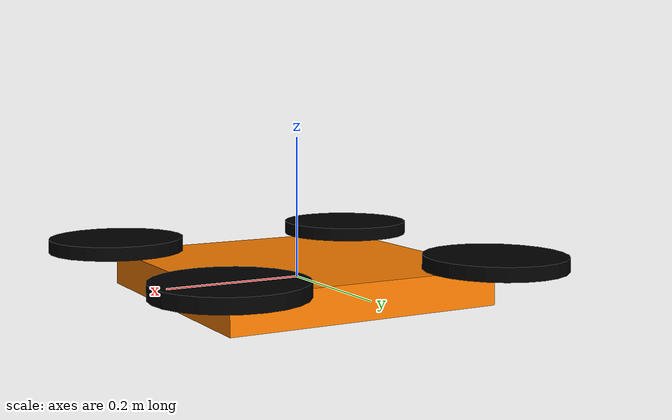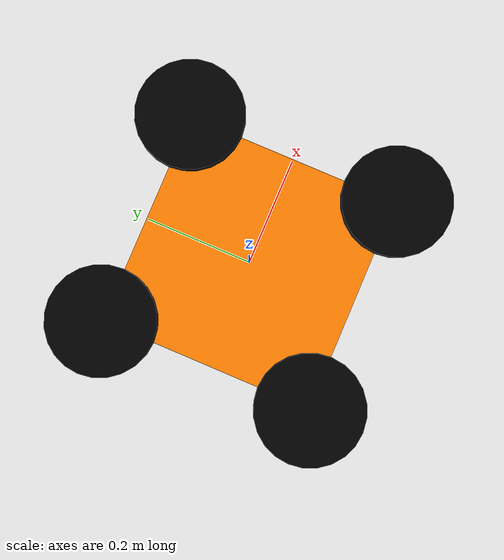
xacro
<?xml version="1.0"?>
<robot xmlns:xacro="http://www.ros.org/wiki/xacro" name="hunter_drone">

    <xacro:property name="base_width" value="0.4"/>
    <xacro:property name="base_height" value="0.05"/>
    <xacro:property name="base_mass" value="1.5"/> <xacro:property name="rotor_radius" value="0.1"/>
    <xacro:property name="rotor_height" value="0.02"/>
    <xacro:property name="rotor_mass" value="0.05"/> <material name="orange">
        <color rgba="1.0 0.5 0.0 1.0"/>
    </material>
    <material name="black">
        <color rgba="0.0 0.0 0.0 1.0"/>
    </material>

    <xacro:macro name="box_inertia" params="m w h d">
        <inertial>
            <mass value="${m}"/>
            <inertia ixx="${(m/12) * (h*h + d*d)}" ixy="0.0" ixz="0.0"
                     iyy="${(m/12) * (w*w + d*d)}" iyz="0.0"
                     izz="${(m/12) * (w*w + h*h)}"/>
        </inertial>
    </xacro:macro>

    <xacro:macro name="cylinder_inertia" params="m r h">
        <inertial>
            <mass value="${m}"/>
            <inertia ixx="${(m/12) * (3*r*r + h*h)}" ixy="0.0" ixz="0.0"
                     iyy="${(m/12) * (3*r*r + h*h)}" iyz="0.0"
                     izz="${(m/2) * (r*r)}"/>
        </inertial>
    </xacro:macro>

    <link name="base_link">
        <visual>
            <geometry>
                <box size="${base_width} ${base_width} ${base_height}"/>
            </geometry>
            <material name="orange"/>
        </visual>
        <collision>
            <geometry>
                <box size="${base_width} ${base_width} ${base_height}"/>
            </geometry>
        </collision>
        <xacro:box_inertia m="${base_mass}" w="${base_width}" h="${base_width}" d="${base_height}"/>
    </link>

    <gazebo reference="base_link">
        <material>Gazebo/Orange</material>
    </gazebo>

    <xacro:macro name="rotor" params="prefix x y">
        <link name="${prefix}_rotor">
            <visual>
                <geometry>
                    <cylinder radius="${rotor_radius}" length="${rotor_height}"/>
                </geometry>
                <material name="black"/>
            </visual>
            <collision>
                <geometry>
                    <cylinder radius="${rotor_radius}" length="${rotor_height}"/>
                </geometry>
            </collision>
            <xacro:cylinder_inertia m="${rotor_mass}" r="${rotor_radius}" h="${rotor_height}"/>
        </link>

        <joint name="${prefix}_joint" type="continuous">
            <parent link="base_link"/>
            <child link="${prefix}_rotor"/>
            <origin xyz="${x} ${y} ${base_height/2 + rotor_height/2}" rpy="0 0 0"/>
            <axis xyz="0 0 1"/>
        </joint>

        <gazebo reference="${prefix}_rotor">
            <material>Gazebo/Black</material>
        </gazebo>
    </xacro:macro>

    <xacro:rotor prefix="front_left" x="${base_width/2}" y="${base_width/2}"/>
    <xacro:rotor prefix="front_right" x="${base_width/2}" y="-${base_width/2}"/>
    <xacro:rotor prefix="rear_left" x="-${base_width/2}" y="${base_width/2}"/>
    <xacro:rotor prefix="rear_right" x="-${base_width/2}" y="-${base_width/2}"/>

    <gazebo>
        <plugin name="gazebo_ros_force" filename="libgazebo_ros_force.so">
            <ros>
                <namespace>/hunter</namespace>
                <remapping>gazebo_ros_force:=cmd_force</remapping>
            </ros>
            <link_name>base_link</link_name>
            <force_frame>link</force_frame>
        </plugin>
    </gazebo>

</robot>
